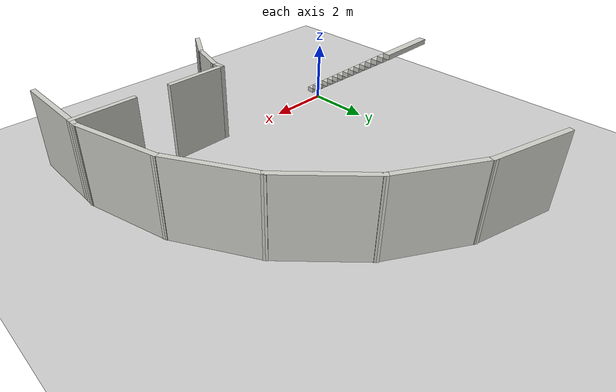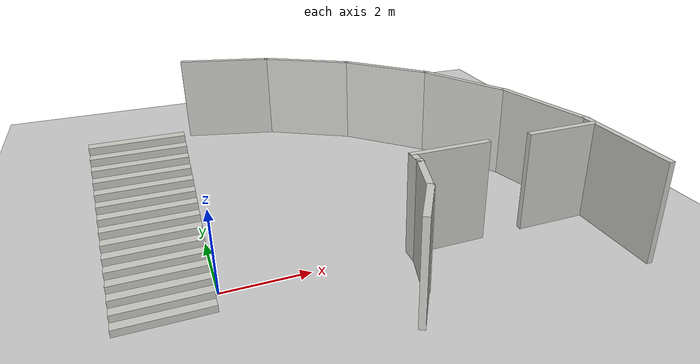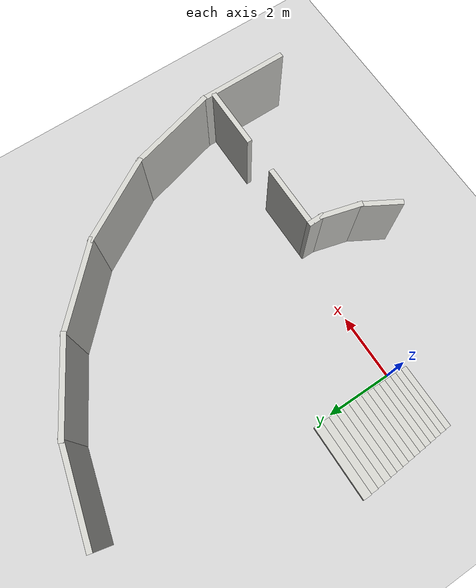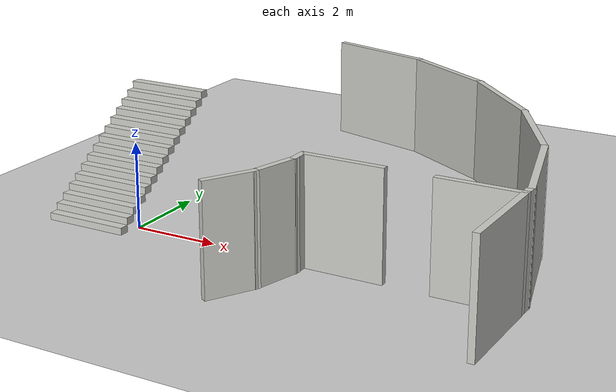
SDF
<sdf version="1.6">
 <world name="default">
  <model name="ground_plane">
   <static>1</static>
   <link name="link">
    <collision name="collision">
     <geometry><plane><normal>0 0 1</normal><size>100 100</size></plane></geometry>
     <surface>
      <contact><collide_bitmask>65535</collide_bitmask></contact>
      <friction><ode><mu>100</mu><mu2>50</mu2></ode></friction>
     </surface>
    </collision>
    <visual name="visual">
     <cast_shadows>0</cast_shadows>
     <geometry><plane><normal>0 0 1</normal><size>100 100</size></plane></geometry>
     <material>
      <script><uri>file://media/materials/scripts/gazebo.material</uri><name>Gazebo/Grey</name></script>
     </material>
    </visual>
   </link>
  </model>
  <model name="floor_plan">
   <link name="Stairs_0">
    <visual name="Stairs_0_Visual_8">
     <pose>-1.64058 2.08074 1.41667 0 -0 -3.14159</pose>
     <geometry><box><size>2 0.233333 0.166667</size></box></geometry>
     <material>
      <script><uri>file://media/materials/scripts/gazebo.material</uri><name>Gazebo/CeilingTiled</name></script>
      <ambient>1 1 1 1</ambient>
      <shader type="pixel"/>
     </material>
     <meta><layer>0</layer></meta>
    </visual>
    <visual name="Stairs_0_Visual_7">
     <pose>-1.64058 1.84741 1.25 0 -0 -3.14159</pose>
     <geometry><box><size>2 0.233333 0.166667</size></box></geometry>
     <material>
      <script><uri>file://media/materials/scripts/gazebo.material</uri><name>Gazebo/CeilingTiled</name></script>
      <ambient>1 1 1 1</ambient>
      <shader type="pixel"/>
     </material>
     <meta><layer>0</layer></meta>
    </visual>
    <visual name="Stairs_0_Visual_11">
     <pose>-1.64058 2.78074 1.91667 0 -0 -3.14159</pose>
     <geometry><box><size>2 0.233333 0.166667</size></box></geometry>
     <material>
      <script><uri>file://media/materials/scripts/gazebo.material</uri><name>Gazebo/CeilingTiled</name></script>
      <ambient>1 1 1 1</ambient>
      <shader type="pixel"/>
     </material>
     <meta><layer>0</layer></meta>
    </visual>
    <visual name="Stairs_0_Visual_0">
     <pose>-1.64058 0.214076 0.083333 0 -0 -3.14159</pose>
     <geometry><box><size>2 0.233333 0.166667</size></box></geometry>
     <material>
      <script><uri>file://media/materials/scripts/gazebo.material</uri><name>Gazebo/CeilingTiled</name></script>
      <ambient>1 1 1 1</ambient>
      <shader type="pixel"/>
     </material>
     <meta><layer>0</layer></meta>
    </visual>
    <visual name="Stairs_0_Visual_2">
     <pose>-1.64058 0.680742 0.416667 0 -0 -3.14159</pose>
     <geometry><box><size>2 0.233333 0.166667</size></box></geometry>
     <material>
      <script><uri>file://media/materials/scripts/gazebo.material</uri><name>Gazebo/CeilingTiled</name></script>
      <ambient>1 1 1 1</ambient>
      <shader type="pixel"/>
     </material>
     <meta><layer>0</layer></meta>
    </visual>
    <visual name="Stairs_0_Visual_3">
     <pose>-1.64058 0.914076 0.583333 0 -0 -3.14159</pose>
     <geometry><box><size>2 0.233333 0.166667</size></box></geometry>
     <material>
      <script><uri>file://media/materials/scripts/gazebo.material</uri><name>Gazebo/CeilingTiled</name></script>
      <ambient>1 1 1 1</ambient>
      <shader type="pixel"/>
     </material>
     <meta><layer>0</layer></meta>
    </visual>
    <visual name="Stairs_0_Visual_14">
     <pose>-1.64058 3.48074 2.41667 0 -0 -3.14159</pose>
     <geometry><box><size>2 0.233333 0.166667</size></box></geometry>
     <material>
      <script><uri>file://media/materials/scripts/gazebo.material</uri><name>Gazebo/CeilingTiled</name></script>
      <ambient>1 1 1 1</ambient>
      <shader type="pixel"/>
     </material>
     <meta><layer>0</layer></meta>
    </visual>
    <visual name="Stairs_0_Visual_1">
     <pose>-1.64058 0.447409 0.25 0 -0 -3.14159</pose>
     <geometry><box><size>2 0.233333 0.166667</size></box></geometry>
     <material>
      <script><uri>file://media/materials/scripts/gazebo.material</uri><name>Gazebo/CeilingTiled</name></script>
      <ambient>1 1 1 1</ambient>
      <shader type="pixel"/>
     </material>
     <meta><layer>0</layer></meta>
    </visual>
    <visual name="Stairs_0_Visual_6">
     <pose>-1.64058 1.61408 1.08333 0 -0 -3.14159</pose>
     <geometry><box><size>2 0.233333 0.166667</size></box></geometry>
     <material>
      <script><uri>file://media/materials/scripts/gazebo.material</uri><name>Gazebo/CeilingTiled</name></script>
      <ambient>1 1 1 1</ambient>
      <shader type="pixel"/>
     </material>
     <meta><layer>0</layer></meta>
    </visual>
    <visual name="Stairs_0_Visual_5">
     <pose>-1.64058 1.38074 0.916667 0 -0 -3.14159</pose>
     <geometry><box><size>2 0.233333 0.166667</size></box></geometry>
     <material>
      <script><uri>file://media/materials/scripts/gazebo.material</uri><name>Gazebo/CeilingTiled</name></script>
      <ambient>1 1 1 1</ambient>
      <shader type="pixel"/>
     </material>
     <meta><layer>0</layer></meta>
    </visual>
    <visual name="Stairs_0_Visual_12">
     <pose>-1.64058 3.01408 2.08333 0 -0 -3.14159</pose>
     <geometry><box><size>2 0.233333 0.166667</size></box></geometry>
     <material>
      <script><uri>file://media/materials/scripts/gazebo.material</uri><name>Gazebo/CeilingTiled</name></script>
      <ambient>1 1 1 1</ambient>
      <shader type="pixel"/>
     </material>
     <meta><layer>0</layer></meta>
    </visual>
    <visual name="Stairs_0_Visual_4">
     <pose>-1.64058 1.14741 0.75 0 -0 -3.14159</pose>
     <geometry><box><size>2 0.233333 0.166667</size></box></geometry>
     <material>
      <script><uri>file://media/materials/scripts/gazebo.material</uri><name>Gazebo/CeilingTiled</name></script>
      <ambient>1 1 1 1</ambient>
      <shader type="pixel"/>
     </material>
     <meta><layer>0</layer></meta>
    </visual>
    <visual name="Stairs_0_Visual_10">
     <pose>-1.64058 2.54741 1.75 0 -0 -3.14159</pose>
     <geometry><box><size>2 0.233333 0.166667</size></box></geometry>
     <material>
      <script><uri>file://media/materials/scripts/gazebo.material</uri><name>Gazebo/CeilingTiled</name></script>
      <ambient>1 1 1 1</ambient>
      <shader type="pixel"/>
     </material>
     <meta><layer>0</layer></meta>
    </visual>
    <visual name="Stairs_0_Visual_9">
     <pose>-1.64058 2.31408 1.58333 0 -0 -3.14159</pose>
     <geometry><box><size>2 0.233333 0.166667</size></box></geometry>
     <material>
      <script><uri>file://media/materials/scripts/gazebo.material</uri><name>Gazebo/CeilingTiled</name></script>
      <ambient>1 1 1 1</ambient>
      <shader type="pixel"/>
     </material>
     <meta><layer>0</layer></meta>
    </visual>
    <visual name="Stairs_0_Visual_13">
     <pose>-1.64058 3.24741 2.25 0 -0 -3.14159</pose>
     <geometry><box><size>2 0.233333 0.166667</size></box></geometry>
     <material>
      <script><uri>file://media/materials/scripts/gazebo.material</uri><name>Gazebo/CeilingTiled</name></script>
      <ambient>1 1 1 1</ambient>
      <shader type="pixel"/>
     </material>
     <meta><layer>0</layer></meta>
    </visual>
    <collision name="Stairs_0_Collision_0">
     <pose>-1.64058 0.214076 0.083333 0 0 -3.14159</pose>
     <geometry><box><size>2 0.233333 0.166667</size></box></geometry>
     <surface>
      <friction>
       <ode><mu>1</mu><mu2>1</mu2><fdir1>0 0 0</fdir1><slip1>0</slip1><slip2>0</slip2></ode>
       <torsional>
        <coefficient>1</coefficient>
        <patch_radius>0</patch_radius>
        <surface_radius>0</surface_radius>
        <use_patch_radius>1</use_patch_radius>
        <ode><slip>0</slip></ode>
       </torsional>
      </friction>
      <bounce><restitution_coefficient>0</restitution_coefficient><threshold>1e+06</threshold></bounce>
      <contact>
       <collide_without_contact>0</collide_without_contact>
       <collide_without_contact_bitmask>1</collide_without_contact_bitmask>
       <collide_bitmask>1</collide_bitmask>
       <ode>
        <soft_cfm>0</soft_cfm>
        <soft_erp>0.2</soft_erp>
        <kp>1e+13</kp>
        <kd>1</kd>
        <max_vel>0.01</max_vel>
        <min_depth>0</min_depth>
       </ode>
       <bullet>
        <split_impulse>1</split_impulse>
        <split_impulse_penetration_threshold>-0.01</split_impulse_penetration_threshold>
        <soft_cfm>0</soft_cfm>
        <soft_erp>0.2</soft_erp>
        <kp>1e+13</kp>
        <kd>1</kd>
       </bullet>
      </contact>
     </surface>
    </collision>
    <collision name="Stairs_0_Collision_12">
     <pose>-1.64058 3.01408 2.08333 0 0 -3.14159</pose>
     <geometry><box><size>2 0.233333 0.166667</size></box></geometry>
     <surface>
      <friction>
       <ode><mu>1</mu><mu2>1</mu2><fdir1>0 0 0</fdir1><slip1>0</slip1><slip2>0</slip2></ode>
       <torsional>
        <coefficient>1</coefficient>
        <patch_radius>0</patch_radius>
        <surface_radius>0</surface_radius>
        <use_patch_radius>1</use_patch_radius>
        <ode><slip>0</slip></ode>
       </torsional>
      </friction>
      <bounce><restitution_coefficient>0</restitution_coefficient><threshold>1e+06</threshold></bounce>
      <contact>
       <collide_without_contact>0</collide_without_contact>
       <collide_without_contact_bitmask>1</collide_without_contact_bitmask>
       <collide_bitmask>1</collide_bitmask>
       <ode>
        <soft_cfm>0</soft_cfm>
        <soft_erp>0.2</soft_erp>
        <kp>1e+13</kp>
        <kd>1</kd>
        <max_vel>0.01</max_vel>
        <min_depth>0</min_depth>
       </ode>
       <bullet>
        <split_impulse>1</split_impulse>
        <split_impulse_penetration_threshold>-0.01</split_impulse_penetration_threshold>
        <soft_cfm>0</soft_cfm>
        <soft_erp>0.2</soft_erp>
        <kp>1e+13</kp>
        <kd>1</kd>
       </bullet>
      </contact>
     </surface>
    </collision>
    <collision name="Stairs_0_Collision_4">
     <pose>-1.64058 1.14741 0.75 0 0 -3.14159</pose>
     <geometry><box><size>2 0.233333 0.166667</size></box></geometry>
     <surface>
      <friction>
       <ode><mu>1</mu><mu2>1</mu2><fdir1>0 0 0</fdir1><slip1>0</slip1><slip2>0</slip2></ode>
       <torsional>
        <coefficient>1</coefficient>
        <patch_radius>0</patch_radius>
        <surface_radius>0</surface_radius>
        <use_patch_radius>1</use_patch_radius>
        <ode><slip>0</slip></ode>
       </torsional>
      </friction>
      <bounce><restitution_coefficient>0</restitution_coefficient><threshold>1e+06</threshold></bounce>
      <contact>
       <collide_without_contact>0</collide_without_contact>
       <collide_without_contact_bitmask>1</collide_without_contact_bitmask>
       <collide_bitmask>1</collide_bitmask>
       <ode>
        <soft_cfm>0</soft_cfm>
        <soft_erp>0.2</soft_erp>
        <kp>1e+13</kp>
        <kd>1</kd>
        <max_vel>0.01</max_vel>
        <min_depth>0</min_depth>
       </ode>
       <bullet>
        <split_impulse>1</split_impulse>
        <split_impulse_penetration_threshold>-0.01</split_impulse_penetration_threshold>
        <soft_cfm>0</soft_cfm>
        <soft_erp>0.2</soft_erp>
        <kp>1e+13</kp>
        <kd>1</kd>
       </bullet>
      </contact>
     </surface>
    </collision>
    <collision name="Stairs_0_Collision_8">
     <pose>-1.64058 2.08074 1.41667 0 0 -3.14159</pose>
     <geometry><box><size>2 0.233333 0.166667</size></box></geometry>
     <surface>
      <friction>
       <ode><mu>1</mu><mu2>1</mu2><fdir1>0 0 0</fdir1><slip1>0</slip1><slip2>0</slip2></ode>
       <torsional>
        <coefficient>1</coefficient>
        <patch_radius>0</patch_radius>
        <surface_radius>0</surface_radius>
        <use_patch_radius>1</use_patch_radius>
        <ode><slip>0</slip></ode>
       </torsional>
      </friction>
      <bounce><restitution_coefficient>0</restitution_coefficient><threshold>1e+06</threshold></bounce>
      <contact>
       <collide_without_contact>0</collide_without_contact>
       <collide_without_contact_bitmask>1</collide_without_contact_bitmask>
       <collide_bitmask>1</collide_bitmask>
       <ode>
        <soft_cfm>0</soft_cfm>
        <soft_erp>0.2</soft_erp>
        <kp>1e+13</kp>
        <kd>1</kd>
        <max_vel>0.01</max_vel>
        <min_depth>0</min_depth>
       </ode>
       <bullet>
        <split_impulse>1</split_impulse>
        <split_impulse_penetration_threshold>-0.01</split_impulse_penetration_threshold>
        <soft_cfm>0</soft_cfm>
        <soft_erp>0.2</soft_erp>
        <kp>1e+13</kp>
        <kd>1</kd>
       </bullet>
      </contact>
     </surface>
    </collision>
    <collision name="Stairs_0_Collision_11">
     <pose>-1.64058 2.78074 1.91667 0 0 -3.14159</pose>
     <geometry><box><size>2 0.233333 0.166667</size></box></geometry>
     <surface>
      <friction>
       <ode><mu>1</mu><mu2>1</mu2><fdir1>0 0 0</fdir1><slip1>0</slip1><slip2>0</slip2></ode>
       <torsional>
        <coefficient>1</coefficient>
        <patch_radius>0</patch_radius>
        <surface_radius>0</surface_radius>
        <use_patch_radius>1</use_patch_radius>
        <ode><slip>0</slip></ode>
       </torsional>
      </friction>
      <bounce><restitution_coefficient>0</restitution_coefficient><threshold>1e+06</threshold></bounce>
      <contact>
       <collide_without_contact>0</collide_without_contact>
       <collide_without_contact_bitmask>1</collide_without_contact_bitmask>
       <collide_bitmask>1</collide_bitmask>
       <ode>
        <soft_cfm>0</soft_cfm>
        <soft_erp>0.2</soft_erp>
        <kp>1e+13</kp>
        <kd>1</kd>
        <max_vel>0.01</max_vel>
        <min_depth>0</min_depth>
       </ode>
       <bullet>
        <split_impulse>1</split_impulse>
        <split_impulse_penetration_threshold>-0.01</split_impulse_penetration_threshold>
        <soft_cfm>0</soft_cfm>
        <soft_erp>0.2</soft_erp>
        <kp>1e+13</kp>
        <kd>1</kd>
       </bullet>
      </contact>
     </surface>
    </collision>
    <collision name="Stairs_0_Collision_6">
     <pose>-1.64058 1.61408 1.08333 0 0 -3.14159</pose>
     <geometry><box><size>2 0.233333 0.166667</size></box></geometry>
     <surface>
      <friction>
       <ode><mu>1</mu><mu2>1</mu2><fdir1>0 0 0</fdir1><slip1>0</slip1><slip2>0</slip2></ode>
       <torsional>
        <coefficient>1</coefficient>
        <patch_radius>0</patch_radius>
        <surface_radius>0</surface_radius>
        <use_patch_radius>1</use_patch_radius>
        <ode><slip>0</slip></ode>
       </torsional>
      </friction>
      <bounce><restitution_coefficient>0</restitution_coefficient><threshold>1e+06</threshold></bounce>
      <contact>
       <collide_without_contact>0</collide_without_contact>
       <collide_without_contact_bitmask>1</collide_without_contact_bitmask>
       <collide_bitmask>1</collide_bitmask>
       <ode>
        <soft_cfm>0</soft_cfm>
        <soft_erp>0.2</soft_erp>
        <kp>1e+13</kp>
        <kd>1</kd>
        <max_vel>0.01</max_vel>
        <min_depth>0</min_depth>
       </ode>
       <bullet>
        <split_impulse>1</split_impulse>
        <split_impulse_penetration_threshold>-0.01</split_impulse_penetration_threshold>
        <soft_cfm>0</soft_cfm>
        <soft_erp>0.2</soft_erp>
        <kp>1e+13</kp>
        <kd>1</kd>
       </bullet>
      </contact>
     </surface>
    </collision>
    <collision name="Stairs_0_Collision_1">
     <pose>-1.64058 0.447409 0.25 0 0 -3.14159</pose>
     <geometry><box><size>2 0.233333 0.166667</size></box></geometry>
     <surface>
      <friction>
       <ode><mu>1</mu><mu2>1</mu2><fdir1>0 0 0</fdir1><slip1>0</slip1><slip2>0</slip2></ode>
       <torsional>
        <coefficient>1</coefficient>
        <patch_radius>0</patch_radius>
        <surface_radius>0</surface_radius>
        <use_patch_radius>1</use_patch_radius>
        <ode><slip>0</slip></ode>
       </torsional>
      </friction>
      <bounce><restitution_coefficient>0</restitution_coefficient><threshold>1e+06</threshold></bounce>
      <contact>
       <collide_without_contact>0</collide_without_contact>
       <collide_without_contact_bitmask>1</collide_without_contact_bitmask>
       <collide_bitmask>1</collide_bitmask>
       <ode>
        <soft_cfm>0</soft_cfm>
        <soft_erp>0.2</soft_erp>
        <kp>1e+13</kp>
        <kd>1</kd>
        <max_vel>0.01</max_vel>
        <min_depth>0</min_depth>
       </ode>
       <bullet>
        <split_impulse>1</split_impulse>
        <split_impulse_penetration_threshold>-0.01</split_impulse_penetration_threshold>
        <soft_cfm>0</soft_cfm>
        <soft_erp>0.2</soft_erp>
        <kp>1e+13</kp>
        <kd>1</kd>
       </bullet>
      </contact>
     </surface>
    </collision>
    <collision name="Stairs_0_Collision_7">
     <pose>-1.64058 1.84741 1.25 0 0 -3.14159</pose>
     <geometry><box><size>2 0.233333 0.166667</size></box></geometry>
     <surface>
      <friction>
       <ode><mu>1</mu><mu2>1</mu2><fdir1>0 0 0</fdir1><slip1>0</slip1><slip2>0</slip2></ode>
       <torsional>
        <coefficient>1</coefficient>
        <patch_radius>0</patch_radius>
        <surface_radius>0</surface_radius>
        <use_patch_radius>1</use_patch_radius>
        <ode><slip>0</slip></ode>
       </torsional>
      </friction>
      <bounce><restitution_coefficient>0</restitution_coefficient><threshold>1e+06</threshold></bounce>
      <contact>
       <collide_without_contact>0</collide_without_contact>
       <collide_without_contact_bitmask>1</collide_without_contact_bitmask>
       <collide_bitmask>1</collide_bitmask>
       <ode>
        <soft_cfm>0</soft_cfm>
        <soft_erp>0.2</soft_erp>
        <kp>1e+13</kp>
        <kd>1</kd>
        <max_vel>0.01</max_vel>
        <min_depth>0</min_depth>
       </ode>
       <bullet>
        <split_impulse>1</split_impulse>
        <split_impulse_penetration_threshold>-0.01</split_impulse_penetration_threshold>
        <soft_cfm>0</soft_cfm>
        <soft_erp>0.2</soft_erp>
        <kp>1e+13</kp>
        <kd>1</kd>
       </bullet>
      </contact>
     </surface>
    </collision>
    <collision name="Stairs_0_Collision_5">
     <pose>-1.64058 1.38074 0.916667 0 0 -3.14159</pose>
     <geometry><box><size>2 0.233333 0.166667</size></box></geometry>
     <surface>
      <friction>
       <ode><mu>1</mu><mu2>1</mu2><fdir1>0 0 0</fdir1><slip1>0</slip1><slip2>0</slip2></ode>
       <torsional>
        <coefficient>1</coefficient>
        <patch_radius>0</patch_radius>
        <surface_radius>0</surface_radius>
        <use_patch_radius>1</use_patch_radius>
        <ode><slip>0</slip></ode>
       </torsional>
      </friction>
      <bounce><restitution_coefficient>0</restitution_coefficient><threshold>1e+06</threshold></bounce>
      <contact>
       <collide_without_contact>0</collide_without_contact>
       <collide_without_contact_bitmask>1</collide_without_contact_bitmask>
       <collide_bitmask>1</collide_bitmask>
       <ode>
        <soft_cfm>0</soft_cfm>
        <soft_erp>0.2</soft_erp>
        <kp>1e+13</kp>
        <kd>1</kd>
        <max_vel>0.01</max_vel>
        <min_depth>0</min_depth>
       </ode>
       <bullet>
        <split_impulse>1</split_impulse>
        <split_impulse_penetration_threshold>-0.01</split_impulse_penetration_threshold>
        <soft_cfm>0</soft_cfm>
        <soft_erp>0.2</soft_erp>
        <kp>1e+13</kp>
        <kd>1</kd>
       </bullet>
      </contact>
     </surface>
    </collision>
    <collision name="Stairs_0_Collision_10">
     <pose>-1.64058 2.54741 1.75 0 0 -3.14159</pose>
     <geometry><box><size>2 0.233333 0.166667</size></box></geometry>
     <surface>
      <friction>
       <ode><mu>1</mu><mu2>1</mu2><fdir1>0 0 0</fdir1><slip1>0</slip1><slip2>0</slip2></ode>
       <torsional>
        <coefficient>1</coefficient>
        <patch_radius>0</patch_radius>
        <surface_radius>0</surface_radius>
        <use_patch_radius>1</use_patch_radius>
        <ode><slip>0</slip></ode>
       </torsional>
      </friction>
      <bounce><restitution_coefficient>0</restitution_coefficient><threshold>1e+06</threshold></bounce>
      <contact>
       <collide_without_contact>0</collide_without_contact>
       <collide_without_contact_bitmask>1</collide_without_contact_bitmask>
       <collide_bitmask>1</collide_bitmask>
       <ode>
        <soft_cfm>0</soft_cfm>
        <soft_erp>0.2</soft_erp>
        <kp>1e+13</kp>
        <kd>1</kd>
        <max_vel>0.01</max_vel>
        <min_depth>0</min_depth>
       </ode>
       <bullet>
        <split_impulse>1</split_impulse>
        <split_impulse_penetration_threshold>-0.01</split_impulse_penetration_threshold>
        <soft_cfm>0</soft_cfm>
        <soft_erp>0.2</soft_erp>
        <kp>1e+13</kp>
        <kd>1</kd>
       </bullet>
      </contact>
     </surface>
    </collision>
    <collision name="Stairs_0_Collision_9">
     <pose>-1.64058 2.31408 1.58333 0 0 -3.14159</pose>
     <geometry><box><size>2 0.233333 0.166667</size></box></geometry>
     <surface>
      <friction>
       <ode><mu>1</mu><mu2>1</mu2><fdir1>0 0 0</fdir1><slip1>0</slip1><slip2>0</slip2></ode>
       <torsional>
        <coefficient>1</coefficient>
        <patch_radius>0</patch_radius>
        <surface_radius>0</surface_radius>
        <use_patch_radius>1</use_patch_radius>
        <ode><slip>0</slip></ode>
       </torsional>
      </friction>
      <bounce><restitution_coefficient>0</restitution_coefficient><threshold>1e+06</threshold></bounce>
      <contact>
       <collide_without_contact>0</collide_without_contact>
       <collide_without_contact_bitmask>1</collide_without_contact_bitmask>
       <collide_bitmask>1</collide_bitmask>
       <ode>
        <soft_cfm>0</soft_cfm>
        <soft_erp>0.2</soft_erp>
        <kp>1e+13</kp>
        <kd>1</kd>
        <max_vel>0.01</max_vel>
        <min_depth>0</min_depth>
       </ode>
       <bullet>
        <split_impulse>1</split_impulse>
        <split_impulse_penetration_threshold>-0.01</split_impulse_penetration_threshold>
        <soft_cfm>0</soft_cfm>
        <soft_erp>0.2</soft_erp>
        <kp>1e+13</kp>
        <kd>1</kd>
       </bullet>
      </contact>
     </surface>
    </collision>
    <collision name="Stairs_0_Collision_3">
     <pose>-1.64058 0.914076 0.583333 0 0 -3.14159</pose>
     <geometry><box><size>2 0.233333 0.166667</size></box></geometry>
     <surface>
      <friction>
       <ode><mu>1</mu><mu2>1</mu2><fdir1>0 0 0</fdir1><slip1>0</slip1><slip2>0</slip2></ode>
       <torsional>
        <coefficient>1</coefficient>
        <patch_radius>0</patch_radius>
        <surface_radius>0</surface_radius>
        <use_patch_radius>1</use_patch_radius>
        <ode><slip>0</slip></ode>
       </torsional>
      </friction>
      <bounce><restitution_coefficient>0</restitution_coefficient><threshold>1e+06</threshold></bounce>
      <contact>
       <collide_without_contact>0</collide_without_contact>
       <collide_without_contact_bitmask>1</collide_without_contact_bitmask>
       <collide_bitmask>1</collide_bitmask>
       <ode>
        <soft_cfm>0</soft_cfm>
        <soft_erp>0.2</soft_erp>
        <kp>1e+13</kp>
        <kd>1</kd>
        <max_vel>0.01</max_vel>
        <min_depth>0</min_depth>
       </ode>
       <bullet>
        <split_impulse>1</split_impulse>
        <split_impulse_penetration_threshold>-0.01</split_impulse_penetration_threshold>
        <soft_cfm>0</soft_cfm>
        <soft_erp>0.2</soft_erp>
        <kp>1e+13</kp>
        <kd>1</kd>
       </bullet>
      </contact>
     </surface>
    </collision>
    <collision name="Stairs_0_Collision_2">
     <pose>-1.64058 0.680742 0.416667 0 0 -3.14159</pose>
     <geometry><box><size>2 0.233333 0.166667</size></box></geometry>
     <surface>
      <friction>
       <ode><mu>1</mu><mu2>1</mu2><fdir1>0 0 0</fdir1><slip1>0</slip1><slip2>0</slip2></ode>
       <torsional>
        <coefficient>1</coefficient>
        <patch_radius>0</patch_radius>
        <surface_radius>0</surface_radius>
        <use_patch_radius>1</use_patch_radius>
        <ode><slip>0</slip></ode>
       </torsional>
      </friction>
      <bounce><restitution_coefficient>0</restitution_coefficient><threshold>1e+06</threshold></bounce>
      <contact>
       <collide_without_contact>0</collide_without_contact>
       <collide_without_contact_bitmask>1</collide_without_contact_bitmask>
       <collide_bitmask>1</collide_bitmask>
       <ode>
        <soft_cfm>0</soft_cfm>
        <soft_erp>0.2</soft_erp>
        <kp>1e+13</kp>
        <kd>1</kd>
        <max_vel>0.01</max_vel>
        <min_depth>0</min_depth>
       </ode>
       <bullet>
        <split_impulse>1</split_impulse>
        <split_impulse_penetration_threshold>-0.01</split_impulse_penetration_threshold>
        <soft_cfm>0</soft_cfm>
        <soft_erp>0.2</soft_erp>
        <kp>1e+13</kp>
        <kd>1</kd>
       </bullet>
      </contact>
     </surface>
    </collision>
    <collision name="Stairs_0_Collision_13">
     <pose>-1.64058 3.24741 2.25 0 0 -3.14159</pose>
     <geometry><box><size>2 0.233333 0.166667</size></box></geometry>
     <surface>
      <friction>
       <ode><mu>1</mu><mu2>1</mu2><fdir1>0 0 0</fdir1><slip1>0</slip1><slip2>0</slip2></ode>
       <torsional>
        <coefficient>1</coefficient>
        <patch_radius>0</patch_radius>
        <surface_radius>0</surface_radius>
        <use_patch_radius>1</use_patch_radius>
        <ode><slip>0</slip></ode>
       </torsional>
      </friction>
      <bounce><restitution_coefficient>0</restitution_coefficient><threshold>1e+06</threshold></bounce>
      <contact>
       <collide_without_contact>0</collide_without_contact>
       <collide_without_contact_bitmask>1</collide_without_contact_bitmask>
       <collide_bitmask>1</collide_bitmask>
       <ode>
        <soft_cfm>0</soft_cfm>
        <soft_erp>0.2</soft_erp>
        <kp>1e+13</kp>
        <kd>1</kd>
        <max_vel>0.01</max_vel>
        <min_depth>0</min_depth>
       </ode>
       <bullet>
        <split_impulse>1</split_impulse>
        <split_impulse_penetration_threshold>-0.01</split_impulse_penetration_threshold>
        <soft_cfm>0</soft_cfm>
        <soft_erp>0.2</soft_erp>
        <kp>1e+13</kp>
        <kd>1</kd>
       </bullet>
      </contact>
     </surface>
    </collision>
    <collision name="Stairs_0_Collision_14">
     <pose>-1.64058 3.48074 2.41667 0 0 -3.14159</pose>
     <geometry><box><size>2 0.233333 0.166667</size></box></geometry>
     <surface>
      <friction>
       <ode><mu>1</mu><mu2>1</mu2><fdir1>0 0 0</fdir1><slip1>0</slip1><slip2>0</slip2></ode>
       <torsional>
        <coefficient>1</coefficient>
        <patch_radius>0</patch_radius>
        <surface_radius>0</surface_radius>
        <use_patch_radius>1</use_patch_radius>
        <ode><slip>0</slip></ode>
       </torsional>
      </friction>
      <bounce><restitution_coefficient>0</restitution_coefficient><threshold>1e+06</threshold></bounce>
      <contact>
       <collide_without_contact>0</collide_without_contact>
       <collide_without_contact_bitmask>1</collide_without_contact_bitmask>
       <collide_bitmask>1</collide_bitmask>
       <ode>
        <soft_cfm>0</soft_cfm>
        <soft_erp>0.2</soft_erp>
        <kp>1e+13</kp>
        <kd>1</kd>
        <max_vel>0.01</max_vel>
        <min_depth>0</min_depth>
       </ode>
       <bullet>
        <split_impulse>1</split_impulse>
        <split_impulse_penetration_threshold>-0.01</split_impulse_penetration_threshold>
        <soft_cfm>0</soft_cfm>
        <soft_erp>0.2</soft_erp>
        <kp>1e+13</kp>
        <kd>1</kd>
       </bullet>
      </contact>
     </surface>
    </collision>
   </link>
   <link name="Wall_31">
    <pose>8.51642 -0.404591 0 0 -0 1.5708</pose>
    <visual name="Wall_31_Visual">
     <pose>0 0 1.25 0 -0 0</pose>
     <geometry><box><size>2.75 0.15 2.5</size></box></geometry>
     <material>
      <script><uri>file://media/materials/scripts/gazebo.material</uri><name>Gazebo/CeilingTiled</name></script>
      <ambient>1 1 1 1</ambient>
      <shader type="pixel"/>
     </material>
     <meta><layer>0</layer></meta>
    </visual>
    <collision name="Wall_31_Collision">
     <pose>0 0 1.25 0 -0 0</pose>
     <geometry><box><size>2.75 0.15 2.5</size></box></geometry>
     <surface>
      <friction>
       <ode><mu>1</mu><mu2>1</mu2><fdir1>0 0 0</fdir1><slip1>0</slip1><slip2>0</slip2></ode>
       <torsional>
        <coefficient>1</coefficient>
        <patch_radius>0</patch_radius>
        <surface_radius>0</surface_radius>
        <use_patch_radius>1</use_patch_radius>
        <ode><slip>0</slip></ode>
       </torsional>
      </friction>
      <bounce><restitution_coefficient>0</restitution_coefficient><threshold>1e+06</threshold></bounce>
      <contact>
       <collide_without_contact>0</collide_without_contact>
       <collide_without_contact_bitmask>1</collide_without_contact_bitmask>
       <collide_bitmask>1</collide_bitmask>
       <ode>
        <soft_cfm>0</soft_cfm>
        <soft_erp>0.2</soft_erp>
        <kp>1e+13</kp>
        <kd>1</kd>
        <max_vel>0.01</max_vel>
        <min_depth>0</min_depth>
       </ode>
       <bullet>
        <split_impulse>1</split_impulse>
        <split_impulse_penetration_threshold>-0.01</split_impulse_penetration_threshold>
        <soft_cfm>0</soft_cfm>
        <soft_erp>0.2</soft_erp>
        <kp>1e+13</kp>
        <kd>1</kd>
       </bullet>
      </contact>
     </surface>
    </collision>
   </link>
   <link name="Wall_33">
    <pose>8.18003 2.15131 0 0 -0 1.8325</pose>
    <visual name="Wall_33_Visual">
     <pose>0 0 1.25 0 -0 0</pose>
     <geometry><box><size>2.75 0.15 2.5</size></box></geometry>
     <material>
      <script><uri>file://media/materials/scripts/gazebo.material</uri><name>Gazebo/CeilingTiled</name></script>
      <ambient>1 1 1 1</ambient>
      <shader type="pixel"/>
     </material>
     <meta><layer>0</layer></meta>
    </visual>
    <collision name="Wall_33_Collision">
     <pose>0 0 1.25 0 -0 0</pose>
     <geometry><box><size>2.75 0.15 2.5</size></box></geometry>
     <surface>
      <friction>
       <ode><mu>1</mu><mu2>1</mu2><fdir1>0 0 0</fdir1><slip1>0</slip1><slip2>0</slip2></ode>
       <torsional>
        <coefficient>1</coefficient>
        <patch_radius>0</patch_radius>
        <surface_radius>0</surface_radius>
        <use_patch_radius>1</use_patch_radius>
        <ode><slip>0</slip></ode>
       </torsional>
      </friction>
      <bounce><restitution_coefficient>0</restitution_coefficient><threshold>1e+06</threshold></bounce>
      <contact>
       <collide_without_contact>0</collide_without_contact>
       <collide_without_contact_bitmask>1</collide_without_contact_bitmask>
       <collide_bitmask>1</collide_bitmask>
       <ode>
        <soft_cfm>0</soft_cfm>
        <soft_erp>0.2</soft_erp>
        <kp>1e+13</kp>
        <kd>1</kd>
        <max_vel>0.01</max_vel>
        <min_depth>0</min_depth>
       </ode>
       <bullet>
        <split_impulse>1</split_impulse>
        <split_impulse_penetration_threshold>-0.01</split_impulse_penetration_threshold>
        <soft_cfm>0</soft_cfm>
        <soft_erp>0.2</soft_erp>
        <kp>1e+13</kp>
        <kd>1</kd>
       </bullet>
      </contact>
     </surface>
    </collision>
   </link>
   <link name="Wall_35">
    <pose>7.19364 4.53305 0 0 -0 2.0944</pose>
    <visual name="Wall_35_Visual">
     <pose>0 0 1.25 0 -0 0</pose>
     <geometry><box><size>2.75 0.15 2.5</size></box></geometry>
     <material>
      <script><uri>file://media/materials/scripts/gazebo.material</uri><name>Gazebo/CeilingTiled</name></script>
      <ambient>1 1 1 1</ambient>
      <shader type="pixel"/>
     </material>
     <meta><layer>0</layer></meta>
    </visual>
    <collision name="Wall_35_Collision">
     <pose>0 0 1.25 0 -0 0</pose>
     <geometry><box><size>2.75 0.15 2.5</size></box></geometry>
     <surface>
      <friction>
       <ode><mu>1</mu><mu2>1</mu2><fdir1>0 0 0</fdir1><slip1>0</slip1><slip2>0</slip2></ode>
       <torsional>
        <coefficient>1</coefficient>
        <patch_radius>0</patch_radius>
        <surface_radius>0</surface_radius>
        <use_patch_radius>1</use_patch_radius>
        <ode><slip>0</slip></ode>
       </torsional>
      </friction>
      <bounce><restitution_coefficient>0</restitution_coefficient><threshold>1e+06</threshold></bounce>
      <contact>
       <collide_without_contact>0</collide_without_contact>
       <collide_without_contact_bitmask>1</collide_without_contact_bitmask>
       <collide_bitmask>1</collide_bitmask>
       <ode>
        <soft_cfm>0</soft_cfm>
        <soft_erp>0.2</soft_erp>
        <kp>1e+13</kp>
        <kd>1</kd>
        <max_vel>0.01</max_vel>
        <min_depth>0</min_depth>
       </ode>
       <bullet>
        <split_impulse>1</split_impulse>
        <split_impulse_penetration_threshold>-0.01</split_impulse_penetration_threshold>
        <soft_cfm>0</soft_cfm>
        <soft_erp>0.2</soft_erp>
        <kp>1e+13</kp>
        <kd>1</kd>
       </bullet>
      </contact>
     </surface>
    </collision>
   </link>
   <link name="Wall_37">
    <pose>5.6244 6.57812 0 0 -0 2.35619</pose>
    <visual name="Wall_37_Visual">
     <pose>0 0 1.25 0 -0 0</pose>
     <geometry><box><size>2.75 0.15 2.5</size></box></geometry>
     <material>
      <script><uri>file://media/materials/scripts/gazebo.material</uri><name>Gazebo/CeilingTiled</name></script>
      <ambient>1 1 1 1</ambient>
      <shader type="pixel"/>
     </material>
     <meta><layer>0</layer></meta>
    </visual>
    <collision name="Wall_37_Collision">
     <pose>0 0 1.25 0 -0 0</pose>
     <geometry><box><size>2.75 0.15 2.5</size></box></geometry>
     <surface>
      <friction>
       <ode><mu>1</mu><mu2>1</mu2><fdir1>0 0 0</fdir1><slip1>0</slip1><slip2>0</slip2></ode>
       <torsional>
        <coefficient>1</coefficient>
        <patch_radius>0</patch_radius>
        <surface_radius>0</surface_radius>
        <use_patch_radius>1</use_patch_radius>
        <ode><slip>0</slip></ode>
       </torsional>
      </friction>
      <bounce><restitution_coefficient>0</restitution_coefficient><threshold>1e+06</threshold></bounce>
      <contact>
       <collide_without_contact>0</collide_without_contact>
       <collide_without_contact_bitmask>1</collide_without_contact_bitmask>
       <collide_bitmask>1</collide_bitmask>
       <ode>
        <soft_cfm>0</soft_cfm>
        <soft_erp>0.2</soft_erp>
        <kp>1e+13</kp>
        <kd>1</kd>
        <max_vel>0.01</max_vel>
        <min_depth>0</min_depth>
       </ode>
       <bullet>
        <split_impulse>1</split_impulse>
        <split_impulse_penetration_threshold>-0.01</split_impulse_penetration_threshold>
        <soft_cfm>0</soft_cfm>
        <soft_erp>0.2</soft_erp>
        <kp>1e+13</kp>
        <kd>1</kd>
       </bullet>
      </contact>
     </surface>
    </collision>
   </link>
   <link name="Wall_38">
    <pose>3.57933 8.14736 0 0 -0 2.61799</pose>
    <visual name="Wall_38_Visual">
     <pose>0 0 1.25 0 -0 0</pose>
     <geometry><box><size>2.75 0.15 2.5</size></box></geometry>
     <material>
      <script><uri>file://media/materials/scripts/gazebo.material</uri><name>Gazebo/CeilingTiled</name></script>
      <ambient>1 1 1 1</ambient>
      <shader type="pixel"/>
     </material>
     <meta><layer>0</layer></meta>
    </visual>
    <collision name="Wall_38_Collision">
     <pose>0 0 1.25 0 -0 0</pose>
     <geometry><box><size>2.75 0.15 2.5</size></box></geometry>
     <surface>
      <friction>
       <ode><mu>1</mu><mu2>1</mu2><fdir1>0 0 0</fdir1><slip1>0</slip1><slip2>0</slip2></ode>
       <torsional>
        <coefficient>1</coefficient>
        <patch_radius>0</patch_radius>
        <surface_radius>0</surface_radius>
        <use_patch_radius>1</use_patch_radius>
        <ode><slip>0</slip></ode>
       </torsional>
      </friction>
      <bounce><restitution_coefficient>0</restitution_coefficient><threshold>1e+06</threshold></bounce>
      <contact>
       <collide_without_contact>0</collide_without_contact>
       <collide_without_contact_bitmask>1</collide_without_contact_bitmask>
       <collide_bitmask>1</collide_bitmask>
       <ode>
        <soft_cfm>0</soft_cfm>
        <soft_erp>0.2</soft_erp>
        <kp>1e+13</kp>
        <kd>1</kd>
        <max_vel>0.01</max_vel>
        <min_depth>0</min_depth>
       </ode>
       <bullet>
        <split_impulse>1</split_impulse>
        <split_impulse_penetration_threshold>-0.01</split_impulse_penetration_threshold>
        <soft_cfm>0</soft_cfm>
        <soft_erp>0.2</soft_erp>
        <kp>1e+13</kp>
        <kd>1</kd>
       </bullet>
      </contact>
     </surface>
    </collision>
   </link>
   <link name="Wall_40">
    <pose>1.19779 9.12616 0 0 -0 2.8855</pose>
    <visual name="Wall_40_Visual">
     <pose>0 0 1.25 0 -0 0</pose>
     <geometry><box><size>2.74607 0.15 2.5</size></box></geometry>
     <material>
      <script><uri>file://media/materials/scripts/gazebo.material</uri><name>Gazebo/CeilingTiled</name></script>
      <ambient>1 1 1 1</ambient>
      <shader type="pixel"/>
     </material>
     <meta><layer>0</layer></meta>
    </visual>
    <collision name="Wall_40_Collision">
     <pose>0 0 1.25 0 -0 0</pose>
     <geometry><box><size>2.74607 0.15 2.5</size></box></geometry>
     <surface>
      <friction>
       <ode><mu>1</mu><mu2>1</mu2><fdir1>0 0 0</fdir1><slip1>0</slip1><slip2>0</slip2></ode>
       <torsional>
        <coefficient>1</coefficient>
        <patch_radius>0</patch_radius>
        <surface_radius>0</surface_radius>
        <use_patch_radius>1</use_patch_radius>
        <ode><slip>0</slip></ode>
       </torsional>
      </friction>
      <bounce><restitution_coefficient>0</restitution_coefficient><threshold>1e+06</threshold></bounce>
      <contact>
       <collide_without_contact>0</collide_without_contact>
       <collide_without_contact_bitmask>1</collide_without_contact_bitmask>
       <collide_bitmask>1</collide_bitmask>
       <ode>
        <soft_cfm>0</soft_cfm>
        <soft_erp>0.2</soft_erp>
        <kp>1e+13</kp>
        <kd>1</kd>
        <max_vel>0.01</max_vel>
        <min_depth>0</min_depth>
       </ode>
       <bullet>
        <split_impulse>1</split_impulse>
        <split_impulse_penetration_threshold>-0.01</split_impulse_penetration_threshold>
        <soft_cfm>0</soft_cfm>
        <soft_erp>0.2</soft_erp>
        <kp>1e+13</kp>
        <kd>1</kd>
       </bullet>
      </contact>
     </surface>
    </collision>
   </link>
   <link name="Wall_76">
    <pose>3.17658 -1.31695 0 0 -0 1.0472</pose>
    <visual name="Wall_76_Visual">
     <pose>0 0 1.25 0 -0 0</pose>
     <geometry><box><size>1.25 0.15 2.5</size></box></geometry>
     <material>
      <script><uri>file://media/materials/scripts/gazebo.material</uri><name>Gazebo/CeilingTiled</name></script>
      <ambient>1 1 1 1</ambient>
      <shader type="pixel"/>
     </material>
     <meta><layer>0</layer></meta>
    </visual>
    <collision name="Wall_76_Collision">
     <pose>0 0 1.25 0 -0 0</pose>
     <geometry><box><size>1.25 0.15 2.5</size></box></geometry>
     <surface>
      <friction>
       <ode><mu>1</mu><mu2>1</mu2><fdir1>0 0 0</fdir1><slip1>0</slip1><slip2>0</slip2></ode>
       <torsional>
        <coefficient>1</coefficient>
        <patch_radius>0</patch_radius>
        <surface_radius>0</surface_radius>
        <use_patch_radius>1</use_patch_radius>
        <ode><slip>0</slip></ode>
       </torsional>
      </friction>
      <bounce><restitution_coefficient>0</restitution_coefficient><threshold>1e+06</threshold></bounce>
      <contact>
       <collide_without_contact>0</collide_without_contact>
       <collide_without_contact_bitmask>1</collide_without_contact_bitmask>
       <collide_bitmask>1</collide_bitmask>
       <ode>
        <soft_cfm>0</soft_cfm>
        <soft_erp>0.2</soft_erp>
        <kp>1e+13</kp>
        <kd>1</kd>
        <max_vel>0.01</max_vel>
        <min_depth>0</min_depth>
       </ode>
       <bullet>
        <split_impulse>1</split_impulse>
        <split_impulse_penetration_threshold>-0.01</split_impulse_penetration_threshold>
        <soft_cfm>0</soft_cfm>
        <soft_erp>0.2</soft_erp>
        <kp>1e+13</kp>
        <kd>1</kd>
       </bullet>
      </contact>
     </surface>
    </collision>
   </link>
   <link name="Wall_77">
    <pose>3.59393 -0.309381 0 0 -0 1.309</pose>
    <visual name="Wall_77_Visual">
     <pose>0 0 1.25 0 -0 0</pose>
     <geometry><box><size>1.25 0.15 2.5</size></box></geometry>
     <material>
      <script><uri>file://media/materials/scripts/gazebo.material</uri><name>Gazebo/CeilingTiled</name></script>
      <ambient>1 1 1 1</ambient>
      <shader type="pixel"/>
     </material>
     <meta><layer>0</layer></meta>
    </visual>
    <collision name="Wall_77_Collision">
     <pose>0 0 1.25 0 -0 0</pose>
     <geometry><box><size>1.25 0.15 2.5</size></box></geometry>
     <surface>
      <friction>
       <ode><mu>1</mu><mu2>1</mu2><fdir1>0 0 0</fdir1><slip1>0</slip1><slip2>0</slip2></ode>
       <torsional>
        <coefficient>1</coefficient>
        <patch_radius>0</patch_radius>
        <surface_radius>0</surface_radius>
        <use_patch_radius>1</use_patch_radius>
        <ode><slip>0</slip></ode>
       </torsional>
      </friction>
      <bounce><restitution_coefficient>0</restitution_coefficient><threshold>1e+06</threshold></bounce>
      <contact>
       <collide_without_contact>0</collide_without_contact>
       <collide_without_contact_bitmask>1</collide_without_contact_bitmask>
       <collide_bitmask>1</collide_bitmask>
       <ode>
        <soft_cfm>0</soft_cfm>
        <soft_erp>0.2</soft_erp>
        <kp>1e+13</kp>
        <kd>1</kd>
        <max_vel>0.01</max_vel>
        <min_depth>0</min_depth>
       </ode>
       <bullet>
        <split_impulse>1</split_impulse>
        <split_impulse_penetration_threshold>-0.01</split_impulse_penetration_threshold>
        <soft_cfm>0</soft_cfm>
        <soft_erp>0.2</soft_erp>
        <kp>1e+13</kp>
        <kd>1</kd>
       </bullet>
      </contact>
     </surface>
    </collision>
   </link>
   <link name="Wall_78">
    <pose>3.73635 0.396644 0 0 -0 1.5704</pose>
    <visual name="Wall_78_Visual">
     <pose>0 0 1.25 0 -0 0</pose>
     <geometry><box><size>0.5 0.15 2.5</size></box></geometry>
     <material>
      <script><uri>file://media/materials/scripts/gazebo.material</uri><name>Gazebo/CeilingTiled</name></script>
      <ambient>1 1 1 1</ambient>
      <shader type="pixel"/>
     </material>
     <meta><layer>0</layer></meta>
    </visual>
    <collision name="Wall_78_Collision">
     <pose>0 0 1.25 0 -0 0</pose>
     <geometry><box><size>0.5 0.15 2.5</size></box></geometry>
     <surface>
      <friction>
       <ode><mu>1</mu><mu2>1</mu2><fdir1>0 0 0</fdir1><slip1>0</slip1><slip2>0</slip2></ode>
       <torsional>
        <coefficient>1</coefficient>
        <patch_radius>0</patch_radius>
        <surface_radius>0</surface_radius>
        <use_patch_radius>1</use_patch_radius>
        <ode><slip>0</slip></ode>
       </torsional>
      </friction>
      <bounce><restitution_coefficient>0</restitution_coefficient><threshold>1e+06</threshold></bounce>
      <contact>
       <collide_without_contact>0</collide_without_contact>
       <collide_without_contact_bitmask>1</collide_without_contact_bitmask>
       <collide_bitmask>1</collide_bitmask>
       <ode>
        <soft_cfm>0</soft_cfm>
        <soft_erp>0.2</soft_erp>
        <kp>1e+13</kp>
        <kd>1</kd>
        <max_vel>0.01</max_vel>
        <min_depth>0</min_depth>
       </ode>
       <bullet>
        <split_impulse>1</split_impulse>
        <split_impulse_penetration_threshold>-0.01</split_impulse_penetration_threshold>
        <soft_cfm>0</soft_cfm>
        <soft_erp>0.2</soft_erp>
        <kp>1e+13</kp>
        <kd>1</kd>
       </bullet>
      </contact>
     </surface>
    </collision>
   </link>
   <link name="Wall_90">
    <pose>7.62467 0.571409 0 0 -0 3.14159</pose>
    <visual name="Wall_90_Visual">
     <pose>0 0 1.25 0 -0 0</pose>
     <geometry><box><size>1.9335 0.15 2.5</size></box></geometry>
     <material>
      <script><uri>file://media/materials/scripts/gazebo.material</uri><name>Gazebo/CeilingTiled</name></script>
      <ambient>1 1 1 1</ambient>
      <shader type="pixel"/>
     </material>
     <meta><layer>0</layer></meta>
    </visual>
    <collision name="Wall_90_Collision">
     <pose>0 0 1.25 0 -0 0</pose>
     <geometry><box><size>1.9335 0.15 2.5</size></box></geometry>
     <surface>
      <friction>
       <ode><mu>1</mu><mu2>1</mu2><fdir1>0 0 0</fdir1><slip1>0</slip1><slip2>0</slip2></ode>
       <torsional>
        <coefficient>1</coefficient>
        <patch_radius>0</patch_radius>
        <surface_radius>0</surface_radius>
        <use_patch_radius>1</use_patch_radius>
        <ode><slip>0</slip></ode>
       </torsional>
      </friction>
      <bounce><restitution_coefficient>0</restitution_coefficient><threshold>1e+06</threshold></bounce>
      <contact>
       <collide_without_contact>0</collide_without_contact>
       <collide_without_contact_bitmask>1</collide_without_contact_bitmask>
       <collide_bitmask>1</collide_bitmask>
       <ode>
        <soft_cfm>0</soft_cfm>
        <soft_erp>0.2</soft_erp>
        <kp>1e+13</kp>
        <kd>1</kd>
        <max_vel>0.01</max_vel>
        <min_depth>0</min_depth>
       </ode>
       <bullet>
        <split_impulse>1</split_impulse>
        <split_impulse_penetration_threshold>-0.01</split_impulse_penetration_threshold>
        <soft_cfm>0</soft_cfm>
        <soft_erp>0.2</soft_erp>
        <kp>1e+13</kp>
        <kd>1</kd>
       </bullet>
      </contact>
     </surface>
    </collision>
   </link>
   <link name="Wall_92">
    <pose>4.64392 0.571409 0 0 -0 0</pose>
    <visual name="Wall_92_Visual">
     <pose>0 0 1.25 0 -0 0</pose>
     <geometry><box><size>1.9335 0.15 2.5</size></box></geometry>
     <material>
      <script><uri>file://media/materials/scripts/gazebo.material</uri><name>Gazebo/CeilingTiled</name></script>
      <ambient>1 1 1 1</ambient>
      <shader type="pixel"/>
     </material>
     <meta><layer>0</layer></meta>
    </visual>
    <collision name="Wall_92_Collision">
     <pose>0 0 1.25 0 -0 0</pose>
     <geometry><box><size>1.9335 0.15 2.5</size></box></geometry>
     <surface>
      <friction>
       <ode><mu>1</mu><mu2>1</mu2><fdir1>0 0 0</fdir1><slip1>0</slip1><slip2>0</slip2></ode>
       <torsional>
        <coefficient>1</coefficient>
        <patch_radius>0</patch_radius>
        <surface_radius>0</surface_radius>
        <use_patch_radius>1</use_patch_radius>
        <ode><slip>0</slip></ode>
       </torsional>
      </friction>
      <bounce><restitution_coefficient>0</restitution_coefficient><threshold>1e+06</threshold></bounce>
      <contact>
       <collide_without_contact>0</collide_without_contact>
       <collide_without_contact_bitmask>1</collide_without_contact_bitmask>
       <collide_bitmask>1</collide_bitmask>
       <ode>
        <soft_cfm>0</soft_cfm>
        <soft_erp>0.2</soft_erp>
        <kp>1e+13</kp>
        <kd>1</kd>
        <max_vel>0.01</max_vel>
        <min_depth>0</min_depth>
       </ode>
       <bullet>
        <split_impulse>1</split_impulse>
        <split_impulse_penetration_threshold>-0.01</split_impulse_penetration_threshold>
        <soft_cfm>0</soft_cfm>
        <soft_erp>0.2</soft_erp>
        <kp>1e+13</kp>
        <kd>1</kd>
       </bullet>
      </contact>
     </surface>
    </collision>
   </link>
   <static>1</static>
   <pose>0.565578 -0.672409 0 0 -0 0</pose>
  </model>
 </world>
</sdf>
